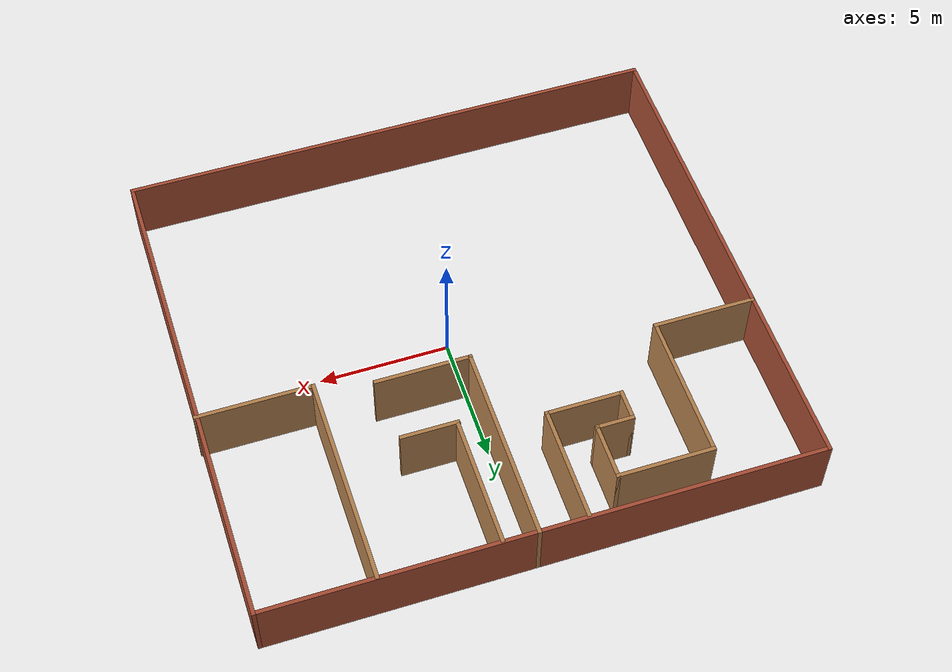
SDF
<?xml version='1.0'?>
<sdf version='1.6'>
  <model name='no-door-office'>
    <pose frame=''>-0.509928 0.337756 0 0 -0 0</pose>
    <link name='Wall_10'>
      <collision name='Wall_10_Collision'>
        <geometry>
          <box>
            <size>3.75 0.15 2.5</size>
          </box>
        </geometry>
        <pose frame=''>0 0 1.25 0 -0 0</pose>
      </collision>
      <visual name='Wall_10_Visual'>
        <pose frame=''>0 0 1.25 0 -0 0</pose>
        <geometry>
          <box>
            <size>3.75 0.15 2.5</size>
          </box>
        </geometry>
        <material>
          <script>
            <uri>file://media/materials/scripts/gazebo.material</uri>
            <name>Gazebo/Wood</name>
          </script>
          <ambient>1 1 1 1</ambient>
        </material>
        <meta>
          <layer>0</layer>
        </meta>
      </visual>
      <pose frame=''>-4.7877 8.31382 0 0 -0 0</pose>
    </link>
    <link name='Wall_11'>
      <collision name='Wall_11_Collision'>
        <geometry>
          <box>
            <size>2.25 0.15 2.5</size>
          </box>
        </geometry>
        <pose frame=''>0 0 1.25 0 -0 0</pose>
      </collision>
      <visual name='Wall_11_Visual'>
        <pose frame=''>0 0 1.25 0 -0 0</pose>
        <geometry>
          <box>
            <size>2.25 0.15 2.5</size>
          </box>
        </geometry>
        <material>
          <script>
            <uri>file://media/materials/scripts/gazebo.material</uri>
            <name>Gazebo/Wood</name>
          </script>
          <ambient>1 1 1 1</ambient>
        </material>
        <meta>
          <layer>0</layer>
        </meta>
      </visual>
      <pose frame=''>-2.9877 7.26382 0 0 -0 -1.5708</pose>
    </link>
    <link name='Wall_12'>
      <collision name='Wall_12_Collision'>
        <geometry>
          <box>
            <size>1.5 0.15 2.5</size>
          </box>
        </geometry>
        <pose frame=''>0 0 1.25 0 -0 0</pose>
      </collision>
      <visual name='Wall_12_Visual'>
        <pose frame=''>0 0 1.25 0 -0 0</pose>
        <geometry>
          <box>
            <size>1.5 0.15 2.5</size>
          </box>
        </geometry>
        <material>
          <script>
            <uri>file://media/materials/scripts/gazebo.material</uri>
            <name>Gazebo/Wood</name>
          </script>
          <ambient>1 1 1 1</ambient>
        </material>
        <meta>
          <layer>0</layer>
        </meta>
      </visual>
      <pose frame=''>-3.6627 6.21382 0 0 -0 3.14159</pose>
    </link>
    <link name='Wall_13'>
      <collision name='Wall_13_Collision'>
        <geometry>
          <box>
            <size>1.25 0.15 2.5</size>
          </box>
        </geometry>
        <pose frame=''>0 0 1.25 0 -0 0</pose>
      </collision>
      <visual name='Wall_13_Visual'>
        <pose frame=''>0 0 1.25 0 -0 0</pose>
        <geometry>
          <box>
            <size>1.25 0.15 2.5</size>
          </box>
        </geometry>
        <material>
          <script>
            <uri>file://media/materials/scripts/gazebo.material</uri>
            <name>Gazebo/Wood</name>
          </script>
          <ambient>1 1 1 1</ambient>
        </material>
        <meta>
          <layer>0</layer>
        </meta>
      </visual>
      <pose frame=''>-4.3377 5.66382 0 0 -0 -1.5708</pose>
    </link>
    <link name='Wall_14'>
      <collision name='Wall_14_Collision'>
        <geometry>
          <box>
            <size>3 0.15 2.5</size>
          </box>
        </geometry>
        <pose frame=''>0 0 1.25 0 -0 0</pose>
      </collision>
      <visual name='Wall_14_Visual'>
        <pose frame=''>0 0 1.25 0 -0 0</pose>
        <geometry>
          <box>
            <size>3 0.15 2.5</size>
          </box>
        </geometry>
        <material>
          <script>
            <uri>file://media/materials/scripts/gazebo.material</uri>
            <name>Gazebo/Wood</name>
          </script>
          <ambient>1 1 1 1</ambient>
        </material>
        <meta>
          <layer>0</layer>
        </meta>
      </visual>
      <pose frame=''>-2.9127 5.11382 0 0 -0 0</pose>
    </link>
    <link name='Wall_15'>
      <collision name='Wall_15_Collision'>
        <geometry>
          <box>
            <size>4.5 0.15 2.5</size>
          </box>
        </geometry>
        <pose frame=''>0 0 1.25 0 -0 0</pose>
      </collision>
      <visual name='Wall_15_Visual'>
        <pose frame=''>0 0 1.25 0 -0 0</pose>
        <geometry>
          <box>
            <size>4.5 0.15 2.5</size>
          </box>
        </geometry>
        <material>
          <script>
            <uri>file://media/materials/scripts/gazebo.material</uri>
            <name>Gazebo/Wood</name>
          </script>
          <ambient>1 1 1 1</ambient>
        </material>
        <meta>
          <layer>0</layer>
        </meta>
      </visual>
      <pose frame=''>-1.4877 7.28882 0 0 -0 1.5708</pose>
    </link>
    <link name='Wall_17'>
      <collision name='Wall_17_Collision'>
        <geometry>
          <box>
            <size>7.75 0.15 2.5</size>
          </box>
        </geometry>
        <pose frame=''>0 0 1.25 0 -0 0</pose>
      </collision>
      <visual name='Wall_17_Visual'>
        <pose frame=''>0 0 1.25 0 -0 0</pose>
        <geometry>
          <box>
            <size>7.75 0.15 2.5</size>
          </box>
        </geometry>
        <material>
          <script>
            <uri>file://media/materials/scripts/gazebo.material</uri>
            <name>Gazebo/Wood</name>
          </script>
          <ambient>1 1 1 1</ambient>
        </material>
        <meta>
          <layer>0</layer>
        </meta>
      </visual>
      <pose frame=''>0.347156 5.75023 0 0 -0 -1.5708</pose>
    </link>
    <link name='Wall_18'>
      <collision name='Wall_18_Collision'>
        <geometry>
          <box>
            <size>3.75 0.15 2.5</size>
          </box>
        </geometry>
        <pose frame=''>0 0 1.25 0 -0 0</pose>
      </collision>
      <visual name='Wall_18_Visual'>
        <pose frame=''>0 0 1.25 0 -0 0</pose>
        <geometry>
          <box>
            <size>3.75 0.15 2.5</size>
          </box>
        </geometry>
        <material>
          <script>
            <uri>file://media/materials/scripts/gazebo.material</uri>
            <name>Gazebo/Wood</name>
          </script>
          <ambient>1 1 1 1</ambient>
        </material>
        <meta>
          <layer>0</layer>
        </meta>
      </visual>
      <pose frame=''>2.13846 1.94153 0 0 -0 0</pose>
    </link>
    <link name='Wall_20'>
      <collision name='Wall_20_Collision'>
        <geometry>
          <box>
            <size>2.25 0.15 2.5</size>
          </box>
        </geometry>
        <pose frame=''>0 0 1.25 0 -0 0</pose>
      </collision>
      <visual name='Wall_20_Visual'>
        <pose frame=''>0 0 1.25 0 -0 0</pose>
        <geometry>
          <box>
            <size>2.25 0.15 2.5</size>
          </box>
        </geometry>
        <material>
          <script>
            <uri>file://media/materials/scripts/gazebo.material</uri>
            <name>Gazebo/Wood</name>
          </script>
          <ambient>1 1 1 1</ambient>
        </material>
        <meta>
          <layer>0</layer>
        </meta>
      </visual>
      <pose frame=''>2.68176 4.48397 0 0 -0 3.14159</pose>
    </link>
    <link name='Wall_21'>
      <collision name='Wall_21_Collision'>
        <geometry>
          <box>
            <size>5.16191 0.15 2.5</size>
          </box>
        </geometry>
        <pose frame=''>0 0 1.25 0 -0 0</pose>
      </collision>
      <visual name='Wall_21_Visual'>
        <pose frame=''>0 0 1.25 0 -0 0</pose>
        <geometry>
          <box>
            <size>5.16191 0.15 2.5</size>
          </box>
        </geometry>
        <material>
          <script>
            <uri>file://media/materials/scripts/gazebo.material</uri>
            <name>Gazebo/Wood</name>
          </script>
          <ambient>1 1 1 1</ambient>
        </material>
        <meta>
          <layer>0</layer>
        </meta>
      </visual>
      <pose frame=''>1.65489 6.98992 0 0 -0 1.5708</pose>
    </link>
    <link name='Wall_23'>
      <collision name='Wall_23_Collision'>
        <geometry>
          <box>
            <size>8.25 0.15 2.5</size>
          </box>
        </geometry>
        <pose frame=''>0 0 1.25 0 -0 0</pose>
      </collision>
      <visual name='Wall_23_Visual'>
        <pose frame=''>0 0 1.25 0 -0 0</pose>
        <geometry>
          <box>
            <size>8.25 0.15 2.5</size>
          </box>
        </geometry>
        <material>
          <script>
            <uri>file://media/materials/scripts/gazebo.material</uri>
            <name>Gazebo/Wood</name>
          </script>
          <ambient>1 1 1 1</ambient>
        </material>
        <meta>
          <layer>0</layer>
        </meta>
      </visual>
      <pose frame=''>6.1082 5.46862 0 0 -0 -1.5708</pose>
    </link>
    <link name='Wall_24'>
      <collision name='Wall_24_Collision'>
        <geometry>
          <box>
            <size>4.5 0.15 2.5</size>
          </box>
        </geometry>
        <pose frame=''>0 0 1.25 0 -0 0</pose>
      </collision>
      <visual name='Wall_24_Visual'>
        <pose frame=''>0 0 1.25 0 -0 0</pose>
        <geometry>
          <box>
            <size>4.5 0.15 2.5</size>
          </box>
        </geometry>
        <material>
          <script>
            <uri>file://media/materials/scripts/gazebo.material</uri>
            <name>Gazebo/Wood</name>
          </script>
          <ambient>1 1 1 1</ambient>
        </material>
        <meta>
          <layer>0</layer>
        </meta>
      </visual>
      <pose frame=''>8.2832 1.41862 0 0 -0 0</pose>
    </link>
    <link name='Wall_3'>
      <collision name='Wall_3_Collision'>
        <geometry>
          <box>
            <size>19.25 0.15 2.5</size>
          </box>
        </geometry>
        <pose frame=''>0 0 1.25 0 -0 0</pose>
      </collision>
      <visual name='Wall_3_Visual'>
        <pose frame=''>0 0 1.25 0 -0 0</pose>
        <geometry>
          <box>
            <size>19.25 0.15 2.5</size>
          </box>
        </geometry>
        <material>
          <script>
            <uri>file://media/materials/scripts/gazebo.material</uri>
            <name>Gazebo/Bricks</name>
          </script>
          <ambient>1 1 1 1</ambient>
        </material>
        <meta>
          <layer>0</layer>
        </meta>
      </visual>
      <pose frame=''>-10.4582 -0.000226 0 0 -0 -1.5708</pose>
    </link>
    <link name='Wall_4'>
      <collision name='Wall_4_Collision'>
        <geometry>
          <box>
            <size>21 0.15 2.5</size>
          </box>
        </geometry>
        <pose frame=''>0 0 1.25 0 -0 0</pose>
      </collision>
      <visual name='Wall_4_Visual'>
        <pose frame=''>0 0 1.25 0 -0 0</pose>
        <geometry>
          <box>
            <size>21 0.15 2.5</size>
          </box>
        </geometry>
        <material>
          <script>
            <uri>file://media/materials/scripts/gazebo.material</uri>
            <name>Gazebo/Bricks</name>
          </script>
          <ambient>1 1 1 1</ambient>
        </material>
        <meta>
          <layer>0</layer>
        </meta>
      </visual>
      <pose frame=''>-0.033201 -9.55023 0 0 -0 0</pose>
    </link>
    <link name='Wall_5'>
      <collision name='Wall_5_Collision'>
        <geometry>
          <box>
            <size>19.25 0.15 2.5</size>
          </box>
        </geometry>
        <pose frame=''>0 0 1.25 0 -0 0</pose>
      </collision>
      <visual name='Wall_5_Visual'>
        <pose frame=''>0 0 1.25 0 -0 0</pose>
        <geometry>
          <box>
            <size>19.25 0.15 2.5</size>
          </box>
        </geometry>
        <material>
          <script>
            <uri>file://media/materials/scripts/gazebo.material</uri>
            <name>Gazebo/Bricks</name>
          </script>
          <ambient>1 1 1 1</ambient>
        </material>
        <meta>
          <layer>0</layer>
        </meta>
      </visual>
      <pose frame=''>10.3918 -0.000226 0 0 -0 1.5708</pose>
    </link>
    <link name='Wall_6'>
      <collision name='Wall_6_Collision'>
        <geometry>
          <box>
            <size>21 0.15 2.5</size>
          </box>
        </geometry>
        <pose frame=''>0 0 1.25 0 -0 0</pose>
      </collision>
      <visual name='Wall_6_Visual'>
        <pose frame=''>0 0 1.25 0 -0 0</pose>
        <geometry>
          <box>
            <size>21 0.15 2.5</size>
          </box>
        </geometry>
        <material>
          <script>
            <uri>file://media/materials/scripts/gazebo.material</uri>
            <name>Gazebo/Bricks</name>
          </script>
          <ambient>1 1 1 1</ambient>
        </material>
        <meta>
          <layer>0</layer>
        </meta>
      </visual>
      <pose frame=''>-0.033201 9.54977 0 0 -0 3.14159</pose>
    </link>
    <link name='Wall_8'>
      <collision name='Wall_8_Collision'>
        <geometry>
          <box>
            <size>4 0.15 2.5</size>
          </box>
        </geometry>
        <pose frame=''>0 0 1.25 0 -0 0</pose>
      </collision>
      <visual name='Wall_8_Visual'>
        <pose frame=''>0 0 1.25 0 -0 0</pose>
        <geometry>
          <box>
            <size>4 0.15 2.5</size>
          </box>
        </geometry>
        <material>
          <script>
            <uri>file://media/materials/scripts/gazebo.material</uri>
            <name>Gazebo/Wood</name>
          </script>
          <ambient>1 1 1 1</ambient>
        </material>
        <meta>
          <layer>0</layer>
        </meta>
      </visual>
      <pose frame=''>-8.5127 2.71382 0 0 -0 0</pose>
    </link>
    <link name='Wall_9'>
      <collision name='Wall_9_Collision'>
        <geometry>
          <box>
            <size>5.75 0.15 2.5</size>
          </box>
        </geometry>
        <pose frame=''>0 0 1.25 0 -0 0</pose>
      </collision>
      <visual name='Wall_9_Visual'>
        <pose frame=''>0 0 1.25 0 -0 0</pose>
        <geometry>
          <box>
            <size>5.75 0.15 2.5</size>
          </box>
        </geometry>
        <material>
          <script>
            <uri>file://media/materials/scripts/gazebo.material</uri>
            <name>Gazebo/Wood</name>
          </script>
          <ambient>1 1 1 1</ambient>
        </material>
        <meta>
          <layer>0</layer>
        </meta>
      </visual>
      <pose frame=''>-6.5877 5.51382 0 0 -0 1.5708</pose>
    </link>
    <static>1</static>
  </model>
</sdf>
